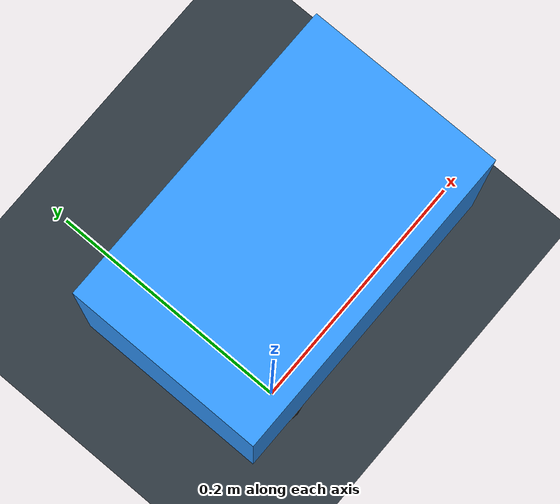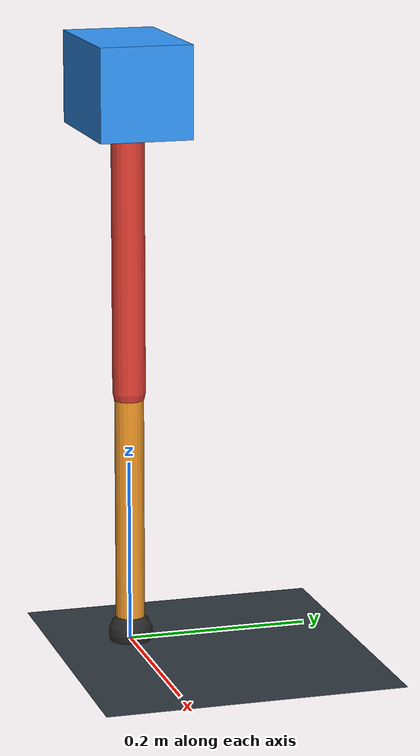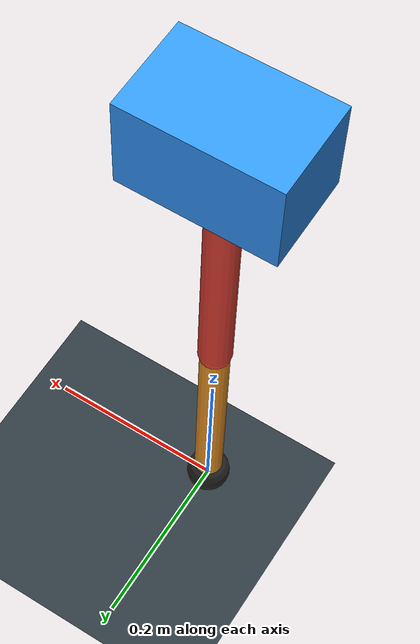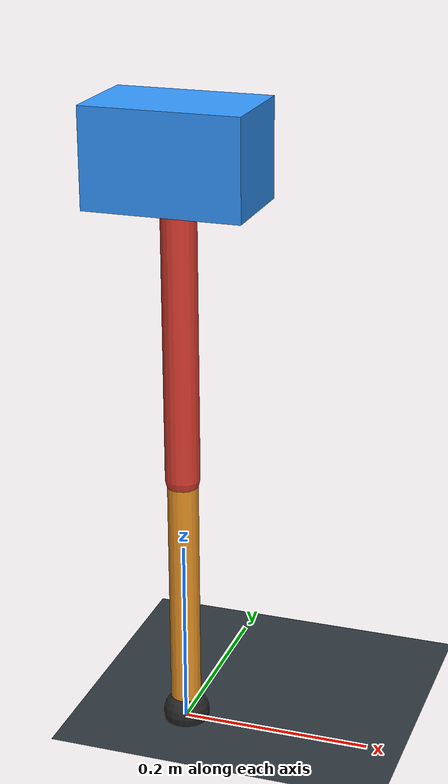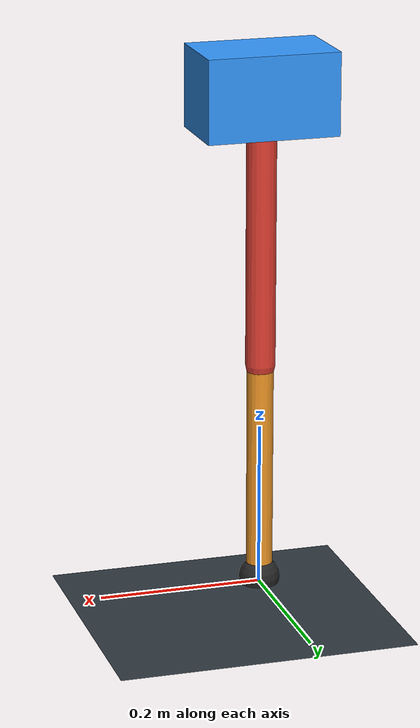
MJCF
<mujoco model="single_axis_two_bar">
  <compiler angle="radian" inertiafromgeom="true"/>
  <option timestep="0.001" integrator="implicitfast" gravity="0 0 -9.81"/>
  <default>
    <joint damping="0.08"/>
    <geom friction="1.2 0.01 0.0001" condim="3"/>
  </default>
  <worldbody>
    <geom name="floor" type="plane" size="5 5 0.1" rgba="0.18 0.22 0.25 1"/>
    <body name="carriage" pos="0 0 0.6161257852553098">
      <joint name="pole_slide" type="slide" axis="0 0 1"/>
      <geom name="payload" type="box" size="0.08 0.05 0.05" mass="2.581684911404769" rgba="0.2 0.6 1 1"/>
      <body name="thigh" pos="0 0 0">
        <joint name="hip" type="hinge" axis="0 1 0"/>
        <geom name="thigh_link" type="capsule" fromto="0 0 0 0 0 -0.33718730784857" size="0.018" mass="0.24025041237927458" rgba="0.9 0.25 0.2 1"/>
        <body name="shank" pos="0 0 -0.33718730784857">
          <joint name="knee" type="hinge" axis="0 1 0"/>
          <geom name="shank_link" type="capsule" fromto="0 0 0 0 0 -0.2722207181878319" size="0.016" mass="0.1939608587882566" rgba="0.95 0.6 0.15 1"/>
          <geom name="foot" type="sphere" pos="0 0 -0.2722207181878319" size="0.025" mass="0.03" rgba="0.15 0.15 0.15 1"/>
          <site name="toe" pos="0 0 -0.2722207181878319" size="0.008"/>
        </body>
      </body>
    </body>
  </worldbody>
  <actuator>
    <motor name="hip_motor" joint="hip" ctrlrange="-36.10448262982802 36.10448262982802"/>
    <motor name="knee_motor" joint="knee" ctrlrange="-80.50032329454324 80.50032329454324"/>
  </actuator>
</mujoco>
